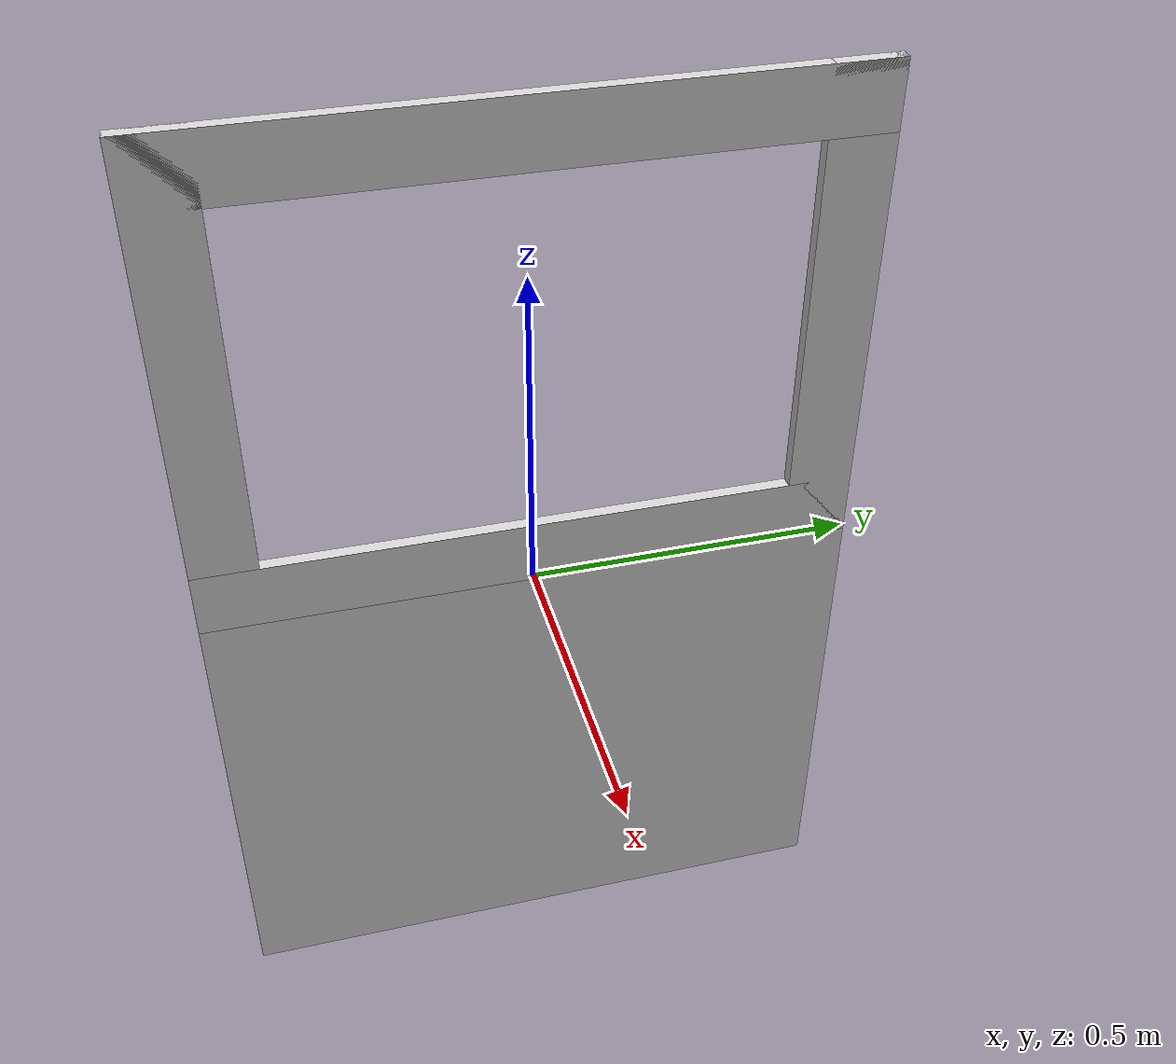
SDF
<?xml version='1.0' encoding='utf-8'?>
<sdf version='1.10'>
  <model name='wall'>
    <pose>0 0 0 0 0 0</pose>
    <link name='box_link'>
      <collision name='box_collision_low'>
        <pose>0 0 -0.375 0 0 0</pose>
        <geometry>
          <box>
            <size>0.02 1 0.75</size>
          </box>
        </geometry>
        <surface>
          <friction>
            <ode/>
          </friction>
          <bounce/>
          <contact/>
        </surface>
      </collision>

      <collision name='box_collision_down'>
        <pose>0 0 0.05 0 0 0</pose>
        <geometry>
          <box>
            <size>0.02 1 0.1</size>
          </box>
        </geometry>
        <surface>
          <friction>
            <ode/>
          </friction>
          <bounce/>
          <contact/>
        </surface>
      </collision>

      <collision name='box_collision_right'>
        <pose>0 0.45 0.375 0 0 0</pose>
        <geometry>
          <box>
            <size>0.02 0.1 0.75</size>
          </box>
        </geometry>
        <surface>
          <friction>
            <ode/>
          </friction>
          <bounce/>
          <contact/>
        </surface>
      </collision>

      <collision name='box_collision_left'>
        <pose>0 -0.45 0.375 0 0 0</pose>
        <geometry>
          <box>
            <size>0.02 0.1 0.75</size>
          </box>
        </geometry>
        <surface>
          <friction>
            <ode/>
          </friction>
          <bounce/>
          <contact/>
        </surface>
      </collision>

      <collision name='box_collision_up'>
        <pose>0 0 0.70 0 0 0</pose>
        <geometry>
          <box>
            <size>0.02 1.0 0.1</size>
          </box>
        </geometry>
        <surface>
          <friction>
            <ode/>
          </friction>
          <bounce/>
          <contact/>
        </surface>
      </collision>

      <visual name='box_visual_low'>
        <pose>0 0 -0.375 0 0 0</pose>
        <geometry>
          <box>
            <size>0.02 1 0.75</size>
          </box>
        </geometry>
        <material>
          <ambient>0.827 0.827 0.827 1.0</ambient>
          <diffuse>0.827 0.827 0.827 1.0</diffuse>
          <specular>0.827 0.827 0.827 1.0</specular>
        </material>
        <cast_shadows>false</cast_shadows>
      </visual>

      <visual name='box_visual_down'>
        <pose>0 0 0.05 0 0 0</pose>
        <geometry>
          <box>
            <size>0.02 1 0.1</size>
          </box>
        </geometry>
        <material>
          <ambient>0.827 0.827 0.827 1.0</ambient>
          <diffuse>0.827 0.827 0.827 1.0</diffuse>
          <specular>0.827 0.827 0.827 1.0</specular>
        </material>
        <cast_shadows>false</cast_shadows>
      </visual>

      <visual name='box_visual_right'>
        <pose>0 0.45 0.375 0 0 0</pose>
        <geometry>
          <box>
            <size>0.02 0.1 0.75</size>
          </box>
        </geometry>
        <material>
          <ambient>0.827 0.827 0.827 1.0</ambient>
          <diffuse>0.827 0.827 0.827 1.0</diffuse>
          <specular>0.827 0.827 0.827 1.0</specular>
        </material>
        <cast_shadows>false</cast_shadows>
      </visual>

      <visual name='box_visual_left'>
        <pose>0 -0.45 0.375 0 0 0</pose>
        <geometry>
          <box>
            <size>0.02 0.1 0.75</size>
          </box>
        </geometry>
        <material>
          <ambient>0.827 0.827 0.827 1.0</ambient>
          <diffuse>0.827 0.827 0.827 1.0</diffuse>
          <specular>0.827 0.827 0.827 1.0</specular>
        </material>
        <cast_shadows>false</cast_shadows>
      </visual>

      <visual name='box_visual_up'>
        <pose>0 0 0.70 0 0 0</pose>
        <geometry>
          <box>
            <size>0.02 1.0 0.1</size>
          </box>
        </geometry>
        <material>
          <ambient>0.827 0.827 0.827 1.0</ambient>
          <diffuse>0.827 0.827 0.827 1.0</diffuse>
          <specular>0.827 0.827 0.827 1.0</specular>
        </material>
        <cast_shadows>false</cast_shadows>
      </visual>

      <pose>0 0 0 0 0 0</pose>
      <enable_wind>false</enable_wind>
    </link>
    <static>true</static>
    <self_collide>false</self_collide>
  </model>
</sdf>
